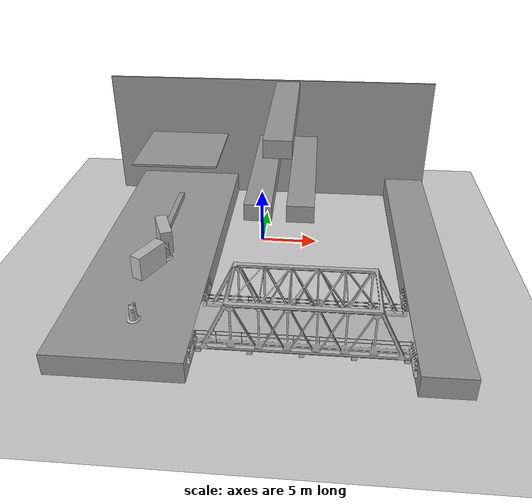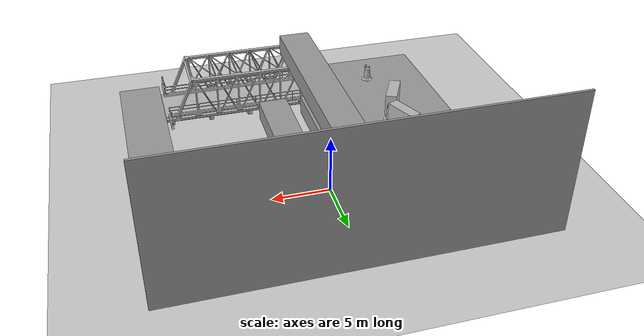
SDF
<sdf version="1.6">
 <world name="default">
  <model name="ground_plane">
   <static>1</static>
   <link name="link">
    <collision name="collision">
     <geometry><plane><normal>0 0 1</normal><size>100 100</size></plane></geometry>
     <surface><friction><ode><mu>100</mu><mu2>50</mu2></ode></friction></surface>
    </collision>
    <visual name="visual">
     <cast_shadows>0</cast_shadows>
     <geometry><plane><normal>0 0 1</normal><size>100 100</size></plane></geometry>
     <material>
      <script><uri>file://media/materials/scripts/gazebo.material</uri><name>Gazebo/Grey</name></script>
     </material>
    </visual>
   </link>
  </model>
  <model name="truss_bridge">
   <static>1</static>
   <link name="link">
    <collision name="collision">
     <geometry><mesh><uri>model://truss_bridge/meshes/truss_bridge.dae</uri></mesh></geometry>
    </collision>
    <visual name="visual">
     <geometry><mesh><uri>model://truss_bridge/meshes/truss_bridge.dae</uri></mesh></geometry>
    </visual>
   </link>
   <pose>4.23114 -14.2919 1.51477 0 -0 1.57194</pose>
  </model>
  <model name="stage_7_model_2">
   <link name="link_0">
    <inertial>
     <mass>1.78308</mass>
     <inertia><ixx>118.07</ixx><ixy>0</ixy><ixz>0</ixz><iyy>2.7027</iyy><iyz>0</iyz><izz>119.584</izz></inertia>
    </inertial>
    <pose>13.855 -4.6516 -0.856819 0 -0 0</pose>
    <visual name="visual">
     <geometry><box><size>3.76682 28.1177 2</size></box></geometry>
     <material>
      <lighting>1</lighting>
      <script><uri>file://media/materials/scripts/gazebo.material</uri><name>Gazebo/Grey</name></script>
      <shader type="pixel"><normal_map>__default__</normal_map></shader>
      <ambient>0.3 0.3 0.3 1</ambient>
      <diffuse>0.7 0.7 0.7 1</diffuse>
      <specular>0.01 0.01 0.01 1</specular>
      <emissive>0 0 0 1</emissive>
     </material>
    </visual>
    <collision name="collision">
     <geometry><box><size>3.76682 28.1177 2</size></box></geometry>
     <surface>
      <friction>
       <ode><mu>1</mu><mu2>1</mu2><fdir1>0 0 0</fdir1><slip1>0</slip1><slip2>0</slip2></ode>
       <torsional>
        <coefficient>1</coefficient>
        <patch_radius>0</patch_radius>
        <surface_radius>0</surface_radius>
        <use_patch_radius>1</use_patch_radius>
        <ode><slip>0</slip></ode>
       </torsional>
      </friction>
      <bounce><restitution_coefficient>0</restitution_coefficient><threshold>1e+06</threshold></bounce>
      <contact>
       <collide_without_contact>0</collide_without_contact>
       <collide_without_contact_bitmask>1</collide_without_contact_bitmask>
       <collide_bitmask>1</collide_bitmask>
       <ode>
        <soft_cfm>0</soft_cfm>
        <soft_erp>0.2</soft_erp>
        <kp>1e+13</kp>
        <kd>1</kd>
        <max_vel>0.01</max_vel>
        <min_depth>0</min_depth>
       </ode>
       <bullet>
        <split_impulse>1</split_impulse>
        <split_impulse_penetration_threshold>-0.01</split_impulse_penetration_threshold>
        <soft_cfm>0</soft_cfm>
        <soft_erp>0.2</soft_erp>
        <kp>1e+13</kp>
        <kd>1</kd>
       </bullet>
      </contact>
     </surface>
    </collision>
   </link>
   <link name="link_0_clone">
    <inertial>
     <mass>10.6661</mass>
     <inertia><ixx>166.876</ixx><ixy>0</ixy><ixz>0</ixz><iyy>92.4397</iyy><iyz>0</iyz><izz>252.205</izz></inertia>
    </inertial>
    <pose>-8.47443 -4.74682 -0.856819 0 -0 0</pose>
    <visual name="visual">
     <geometry><box><size>10 28.1177 2</size></box></geometry>
     <material>
      <lighting>1</lighting>
      <script><uri>file://media/materials/scripts/gazebo.material</uri><name>Gazebo/Grey</name></script>
      <shader type="pixel"><normal_map>__default__</normal_map></shader>
      <ambient>0.3 0.3 0.3 1</ambient>
      <diffuse>0.7 0.7 0.7 1</diffuse>
      <specular>0.01 0.01 0.01 1</specular>
      <emissive>0 0 0 1</emissive>
     </material>
    </visual>
    <collision name="collision">
     <geometry><box><size>10 28.1177 2</size></box></geometry>
     <surface>
      <friction>
       <ode><mu>1</mu><mu2>1</mu2><fdir1>0 0 0</fdir1><slip1>0</slip1><slip2>0</slip2></ode>
       <torsional>
        <coefficient>1</coefficient>
        <patch_radius>0</patch_radius>
        <surface_radius>0</surface_radius>
        <use_patch_radius>1</use_patch_radius>
        <ode><slip>0</slip></ode>
       </torsional>
      </friction>
      <bounce><restitution_coefficient>0</restitution_coefficient><threshold>1e+06</threshold></bounce>
      <contact>
       <collide_without_contact>0</collide_without_contact>
       <collide_without_contact_bitmask>1</collide_without_contact_bitmask>
       <collide_bitmask>1</collide_bitmask>
       <ode>
        <soft_cfm>0</soft_cfm>
        <soft_erp>0.2</soft_erp>
        <kp>1e+13</kp>
        <kd>1</kd>
        <max_vel>0.01</max_vel>
        <min_depth>0</min_depth>
       </ode>
       <bullet>
        <split_impulse>1</split_impulse>
        <split_impulse_penetration_threshold>-0.01</split_impulse_penetration_threshold>
        <soft_cfm>0</soft_cfm>
        <soft_erp>0.2</soft_erp>
        <kp>1e+13</kp>
        <kd>1</kd>
       </bullet>
      </contact>
     </surface>
    </collision>
   </link>
   <link name="link_1">
    <inertial>
     <mass>24.1218</mass>
     <inertia><ixx>434.512</ixx><ixy>0</ixy><ixz>0</ixz><iyy>14.6959</iyy><iyz>0</iyz><izz>440.95</izz></inertia>
    </inertial>
    <pose>0.09 2.1 3.9 0 -0 0</pose>
    <visual name="visual">
     <geometry><box><size>2.29274 14.6323 1.5</size></box></geometry>
     <material>
      <lighting>1</lighting>
      <script><uri>file://media/materials/scripts/gazebo.material</uri><name>Gazebo/Grey</name></script>
      <shader type="pixel"><normal_map>__default__</normal_map></shader>
      <emissive>0 0 0 1</emissive>
      <ambient>0.3 0.3 0.3 1</ambient>
      <diffuse>0.7 0.7 0.7 1</diffuse>
      <specular>0.01 0.01 0.01 1</specular>
     </material>
    </visual>
    <collision name="collision">
     <geometry><box><size>2.29274 14.6323 1.43324</size></box></geometry>
     <surface>
      <friction>
       <ode><mu>1</mu><mu2>1</mu2><fdir1>0 0 0</fdir1><slip1>0</slip1><slip2>0</slip2></ode>
       <torsional>
        <coefficient>1</coefficient>
        <patch_radius>0</patch_radius>
        <surface_radius>0</surface_radius>
        <use_patch_radius>1</use_patch_radius>
        <ode><slip>0</slip></ode>
       </torsional>
      </friction>
      <bounce><restitution_coefficient>0</restitution_coefficient><threshold>1e+06</threshold></bounce>
      <contact>
       <collide_without_contact>0</collide_without_contact>
       <collide_without_contact_bitmask>1</collide_without_contact_bitmask>
       <collide_bitmask>1</collide_bitmask>
       <ode>
        <soft_cfm>0</soft_cfm>
        <soft_erp>0.2</soft_erp>
        <kp>1e+13</kp>
        <kd>1</kd>
        <max_vel>0.01</max_vel>
        <min_depth>0</min_depth>
       </ode>
       <bullet>
        <split_impulse>1</split_impulse>
        <split_impulse_penetration_threshold>-0.01</split_impulse_penetration_threshold>
        <soft_cfm>0</soft_cfm>
        <soft_erp>0.2</soft_erp>
        <kp>1e+13</kp>
        <kd>1</kd>
       </bullet>
      </contact>
     </surface>
    </collision>
   </link>
   <link name="link_1_clone">
    <inertial>
     <mass>24.1218</mass>
     <inertia><ixx>434.512</ixx><ixy>0</ixy><ixz>0</ixz><iyy>14.6959</iyy><iyz>0</iyz><izz>440.95</izz></inertia>
    </inertial>
    <pose>3.6 2.1 3.9 -1e-06 -0 -0.0008</pose>
    <visual name="visual">
     <geometry><box><size>2.29274 14.6323 1.5</size></box></geometry>
     <material>
      <lighting>1</lighting>
      <script><uri>file://media/materials/scripts/gazebo.material</uri><name>Gazebo/Grey</name></script>
      <shader type="pixel"><normal_map>__default__</normal_map></shader>
      <emissive>0 0 0 1</emissive>
      <ambient>0.3 0.3 0.3 1</ambient>
      <diffuse>0.7 0.7 0.7 1</diffuse>
      <specular>0.01 0.01 0.01 1</specular>
     </material>
    </visual>
    <collision name="collision">
     <geometry><box><size>2.29274 14.6323 1.43324</size></box></geometry>
     <surface>
      <friction>
       <ode><mu>1</mu><mu2>1</mu2><fdir1>0 0 0</fdir1><slip1>0</slip1><slip2>0</slip2></ode>
       <torsional>
        <coefficient>1</coefficient>
        <patch_radius>0</patch_radius>
        <surface_radius>0</surface_radius>
        <use_patch_radius>1</use_patch_radius>
        <ode><slip>0</slip></ode>
       </torsional>
      </friction>
      <bounce><restitution_coefficient>0</restitution_coefficient><threshold>1e+06</threshold></bounce>
      <contact>
       <collide_without_contact>0</collide_without_contact>
       <collide_without_contact_bitmask>1</collide_without_contact_bitmask>
       <collide_bitmask>1</collide_bitmask>
       <ode>
        <soft_cfm>0</soft_cfm>
        <soft_erp>0.2</soft_erp>
        <kp>1e+13</kp>
        <kd>1</kd>
        <max_vel>0.01</max_vel>
        <min_depth>0</min_depth>
       </ode>
       <bullet>
        <split_impulse>1</split_impulse>
        <split_impulse_penetration_threshold>-0.01</split_impulse_penetration_threshold>
        <soft_cfm>0</soft_cfm>
        <soft_erp>0.2</soft_erp>
        <kp>1e+13</kp>
        <kd>1</kd>
       </bullet>
      </contact>
     </surface>
    </collision>
   </link>
   <link name="link_1_clone_0">
    <inertial>
     <mass>24.1218</mass>
     <inertia><ixx>434.512</ixx><ixy>0</ixy><ixz>0</ixz><iyy>14.6959</iyy><iyz>0</iyz><izz>440.95</izz></inertia>
    </inertial>
    <pose>1.7 2.1 9.61321 -1e-06 -0 -0.0008</pose>
    <visual name="visual">
     <geometry><box><size>2.29274 14.6323 1.5</size></box></geometry>
     <material>
      <lighting>1</lighting>
      <script><uri>file://media/materials/scripts/gazebo.material</uri><name>Gazebo/Grey</name></script>
      <shader type="pixel"><normal_map>__default__</normal_map></shader>
      <emissive>0 0 0 1</emissive>
      <ambient>0.3 0.3 0.3 1</ambient>
      <diffuse>0.7 0.7 0.7 1</diffuse>
      <specular>0.01 0.01 0.01 1</specular>
     </material>
    </visual>
    <collision name="collision">
     <geometry><box><size>2.29274 14.6323 1.43324</size></box></geometry>
     <surface>
      <friction>
       <ode><mu>1</mu><mu2>1</mu2><fdir1>0 0 0</fdir1><slip1>0</slip1><slip2>0</slip2></ode>
       <torsional>
        <coefficient>1</coefficient>
        <patch_radius>0</patch_radius>
        <surface_radius>0</surface_radius>
        <use_patch_radius>1</use_patch_radius>
        <ode><slip>0</slip></ode>
       </torsional>
      </friction>
      <bounce><restitution_coefficient>0</restitution_coefficient><threshold>1e+06</threshold></bounce>
      <contact>
       <collide_without_contact>0</collide_without_contact>
       <collide_without_contact_bitmask>1</collide_without_contact_bitmask>
       <collide_bitmask>1</collide_bitmask>
       <ode>
        <soft_cfm>0</soft_cfm>
        <soft_erp>0.2</soft_erp>
        <kp>1e+13</kp>
        <kd>1</kd>
        <max_vel>0.01</max_vel>
        <min_depth>0</min_depth>
       </ode>
       <bullet>
        <split_impulse>1</split_impulse>
        <split_impulse_penetration_threshold>-0.01</split_impulse_penetration_threshold>
        <soft_cfm>0</soft_cfm>
        <soft_erp>0.2</soft_erp>
        <kp>1e+13</kp>
        <kd>1</kd>
       </bullet>
      </contact>
     </surface>
    </collision>
   </link>
   <link name="link_1_clone_1">
    <inertial>
     <mass>5.82419</mass>
     <inertia><ixx>30.9448</ixx><ixy>0</ixy><ixz>0</ixz><iyy>29.8324</iyy><iyz>0</iyz><izz>60.7438</izz></inertia>
    </inertial>
    <pose>-8.30541 5.41023 4.61431 -1e-06 -0 -0.0008</pose>
    <visual name="visual">
     <geometry><box><size>7.83783 7.98269 0.194134</size></box></geometry>
     <material>
      <lighting>1</lighting>
      <script><uri>file://media/materials/scripts/gazebo.material</uri><name>Gazebo/Grey</name></script>
      <shader type="pixel"><normal_map>__default__</normal_map></shader>
      <emissive>0 0 0 1</emissive>
      <ambient>0.3 0.3 0.3 1</ambient>
      <diffuse>0.7 0.7 0.7 1</diffuse>
      <specular>0.01 0.01 0.01 1</specular>
     </material>
    </visual>
    <collision name="collision">
     <geometry><box><size>7.83783 7.98269 0.185493</size></box></geometry>
     <surface>
      <friction>
       <ode><mu>1</mu><mu2>1</mu2><fdir1>0 0 0</fdir1><slip1>0</slip1><slip2>0</slip2></ode>
       <torsional>
        <coefficient>1</coefficient>
        <patch_radius>0</patch_radius>
        <surface_radius>0</surface_radius>
        <use_patch_radius>1</use_patch_radius>
        <ode><slip>0</slip></ode>
       </torsional>
      </friction>
      <bounce><restitution_coefficient>0</restitution_coefficient><threshold>1e+06</threshold></bounce>
      <contact>
       <collide_without_contact>0</collide_without_contact>
       <collide_without_contact_bitmask>1</collide_without_contact_bitmask>
       <collide_bitmask>1</collide_bitmask>
       <ode>
        <soft_cfm>0</soft_cfm>
        <soft_erp>0.2</soft_erp>
        <kp>1e+13</kp>
        <kd>1</kd>
        <max_vel>0.01</max_vel>
        <min_depth>0</min_depth>
       </ode>
       <bullet>
        <split_impulse>1</split_impulse>
        <split_impulse_penetration_threshold>-0.01</split_impulse_penetration_threshold>
        <soft_cfm>0</soft_cfm>
        <soft_erp>0.2</soft_erp>
        <kp>1e+13</kp>
        <kd>1</kd>
       </bullet>
      </contact>
     </surface>
    </collision>
   </link>
   <link name="link_1_clone_2">
    <inertial>
     <mass>18.0184</mass>
     <inertia><ixx>53.9959</ixx><ixy>0</ixy><ixz>0</ixz><iyy>0.750769</iyy><iyz>0</iyz><izz>53.9959</izz></inertia>
    </inertial>
    <pose>-8.34722 0.661434 0.412087 -1e-06 -0 -0.0008</pose>
    <visual name="visual">
     <geometry><box><size>0.5 5.97582 0.5</size></box></geometry>
     <material>
      <lighting>1</lighting>
      <script><uri>file://media/materials/scripts/gazebo.material</uri><name>Gazebo/Grey</name></script>
      <shader type="pixel"><normal_map>__default__</normal_map></shader>
      <emissive>0 0 0 1</emissive>
      <ambient>0.3 0.3 0.3 1</ambient>
      <diffuse>0.7 0.7 0.7 1</diffuse>
      <specular>0.01 0.01 0.01 1</specular>
     </material>
    </visual>
    <collision name="collision">
     <geometry><box><size>0.5 5.97582 0.5</size></box></geometry>
     <surface>
      <friction>
       <ode><mu>1</mu><mu2>1</mu2><fdir1>0 0 0</fdir1><slip1>0</slip1><slip2>0</slip2></ode>
       <torsional>
        <coefficient>1</coefficient>
        <patch_radius>0</patch_radius>
        <surface_radius>0</surface_radius>
        <use_patch_radius>1</use_patch_radius>
        <ode><slip>0</slip></ode>
       </torsional>
      </friction>
      <bounce><restitution_coefficient>0</restitution_coefficient><threshold>1e+06</threshold></bounce>
      <contact>
       <collide_without_contact>0</collide_without_contact>
       <collide_without_contact_bitmask>1</collide_without_contact_bitmask>
       <collide_bitmask>1</collide_bitmask>
       <ode>
        <soft_cfm>0</soft_cfm>
        <soft_erp>0.2</soft_erp>
        <kp>1e+13</kp>
        <kd>1</kd>
        <max_vel>0.01</max_vel>
        <min_depth>0</min_depth>
       </ode>
       <bullet>
        <split_impulse>1</split_impulse>
        <split_impulse_penetration_threshold>-0.01</split_impulse_penetration_threshold>
        <soft_cfm>0</soft_cfm>
        <soft_erp>0.2</soft_erp>
        <kp>1e+13</kp>
        <kd>1</kd>
       </bullet>
      </contact>
     </surface>
    </collision>
   </link>
   <link name="link_2">
    <inertial>
     <mass>67.2458</mass>
     <inertia><ixx>850.125</ixx><ixy>0</ixy><ixz>0</ixz><iyy>6525.54</iyy><iyz>0</iyz><izz>5675.86</izz></inertia>
    </inertial>
    <pose>-0.057927 9.45419 4.31508 0 -0 0</pose>
    <visual name="visual">
     <geometry><box><size>31.8248 0.2 12.3152</size></box></geometry>
     <material>
      <lighting>1</lighting>
      <script><uri>file://media/materials/scripts/gazebo.material</uri><name>Gazebo/Grey</name></script>
      <shader type="pixel"><normal_map>__default__</normal_map></shader>
      <ambient>0.3 0.3 0.3 1</ambient>
      <diffuse>0.7 0.7 0.7 1</diffuse>
      <specular>0.01 0.01 0.01 1</specular>
      <emissive>0 0 0 1</emissive>
     </material>
    </visual>
    <collision name="collision">
     <geometry><box><size>31.8248 0.2 12.3152</size></box></geometry>
     <surface>
      <friction>
       <ode><mu>1</mu><mu2>1</mu2><fdir1>0 0 0</fdir1><slip1>0</slip1><slip2>0</slip2></ode>
       <torsional>
        <coefficient>1</coefficient>
        <patch_radius>0</patch_radius>
        <surface_radius>0</surface_radius>
        <use_patch_radius>1</use_patch_radius>
        <ode><slip>0</slip></ode>
       </torsional>
      </friction>
      <bounce><restitution_coefficient>0</restitution_coefficient><threshold>1e+06</threshold></bounce>
      <contact>
       <collide_without_contact>0</collide_without_contact>
       <collide_without_contact_bitmask>1</collide_without_contact_bitmask>
       <collide_bitmask>1</collide_bitmask>
       <ode>
        <soft_cfm>0</soft_cfm>
        <soft_erp>0.2</soft_erp>
        <kp>1e+13</kp>
        <kd>1</kd>
        <max_vel>0.01</max_vel>
        <min_depth>0</min_depth>
       </ode>
       <bullet>
        <split_impulse>1</split_impulse>
        <split_impulse_penetration_threshold>-0.01</split_impulse_penetration_threshold>
        <soft_cfm>0</soft_cfm>
        <soft_erp>0.2</soft_erp>
        <kp>1e+13</kp>
        <kd>1</kd>
       </bullet>
      </contact>
     </surface>
    </collision>
   </link>
   <joint name="link_0_clone_JOINT_4" type="fixed">
    <parent>link_0_clone</parent>
    <child>link_1_clone_2</child>
    <physics>
     <ode><limit><cfm>0</cfm><erp>0.2</erp></limit><suspension><cfm>0</cfm><erp>0.2</erp></suspension></ode>
    </physics>
   </joint>
   <joint name="link_2_JOINT_0" type="fixed">
    <parent>link_2</parent>
    <child>link_0_clone</child>
    <physics>
     <ode><limit><cfm>0</cfm><erp>0.2</erp></limit><suspension><cfm>0</cfm><erp>0.2</erp></suspension></ode>
    </physics>
   </joint>
   <joint name="link_2_JOINT_1" type="fixed">
    <parent>link_2</parent>
    <child>link_1_clone_1</child>
    <physics>
     <ode><limit><cfm>0</cfm><erp>0.2</erp></limit><suspension><cfm>0</cfm><erp>0.2</erp></suspension></ode>
    </physics>
   </joint>
   <joint name="link_2_JOINT_2" type="fixed">
    <parent>link_2</parent>
    <child>link_1</child>
    <physics>
     <ode><limit><cfm>0</cfm><erp>0.2</erp></limit><suspension><cfm>0</cfm><erp>0.2</erp></suspension></ode>
    </physics>
   </joint>
   <joint name="link_2_JOINT_3" type="fixed">
    <parent>link_2</parent>
    <child>link_1_clone</child>
    <physics>
     <ode><limit><cfm>0</cfm><erp>0.2</erp></limit><suspension><cfm>0</cfm><erp>0.2</erp></suspension></ode>
    </physics>
   </joint>
   <joint name="link_2_JOINT_5" type="fixed">
    <parent>link_2</parent>
    <child>link_0</child>
    <physics>
     <ode><limit><cfm>0</cfm><erp>0.2</erp></limit><suspension><cfm>0</cfm><erp>0.2</erp></suspension></ode>
    </physics>
   </joint>
   <joint name="link_2_JOINT_6" type="fixed">
    <parent>link_2</parent>
    <child>link_1_clone_0</child>
    <physics>
     <ode><limit><cfm>0</cfm><erp>0.2</erp></limit><suspension><cfm>0</cfm><erp>0.2</erp></suspension></ode>
    </physics>
   </joint>
   <static>1</static>
   <pose>-0.021425 0.328243 1.76826 0.007894 -2e-06 0.001148</pose>
  </model>
  <model name="Construction Barrel_clone">
   <link name="link">
    <inertial>
     <pose>0 0 0.4 0 -0 0</pose>
     <mass>500</mass>
     <inertia><ixx>51.2096</ixx><iyy>51.2096</iyy><izz>25</izz><ixy>0</ixy><ixz>0</ixz><iyz>0</iyz></inertia>
    </inertial>
    <collision name="collision">
     <geometry><mesh><uri>model://construction_barrel/meshes/construction_barrel.dae</uri></mesh></geometry>
    </collision>
    <visual name="visual">
     <geometry><mesh><uri>model://construction_barrel/meshes/construction_barrel.dae</uri></mesh></geometry>
    </visual>
   </link>
   <pose>-7.44336 -6.47785 1.85777 0.007894 -2.7e-05 0.00377</pose>
  </model>
  <model name="brick_box_3x1x3">
   <static>1</static>
   <link name="chassis">
    <pose>0 0 1.5 0 -0 0</pose>
    <collision name="collision"><geometry><box><size>3 1 3</size></box></geometry></collision>
    <visual name="visual">
     <geometry><mesh><uri>model://brick_box_3x1x3/meshes/simple_box.dae</uri><scale>3 1 3</scale></mesh></geometry>
     <material>
      <script>
       <uri>model://brick_box_3x1x3/materials/scripts</uri>
       <uri>model://brick_box_3x1x3/materials/textures</uri>
       <name>BrickBox/Diffuse</name>
      </script>
     </material>
    </visual>
   </link>
   <pose>-8.04339 -4.55503 0.95907 0 0 -1.1758</pose>
  </model>
  <model name="brick_box_3x1x3_clone_0">
   <static>1</static>
   <link name="chassis">
    <pose>0 0 1.5 0 -0 0</pose>
    <collision name="collision"><geometry><box><size>3 1 3</size></box></geometry></collision>
    <visual name="visual">
     <geometry><mesh><uri>model://brick_box_3x1x3/meshes/simple_box.dae</uri><scale>3 1 3</scale></mesh></geometry>
     <material>
      <script>
       <uri>model://brick_box_3x1x3/materials/scripts</uri>
       <uri>model://brick_box_3x1x3/materials/textures</uri>
       <name>BrickBox/Diffuse</name>
      </script>
     </material>
    </visual>
   </link>
   <pose>-8.38331 -8.32207 0.89717 0 0 -2.0421</pose>
  </model>
  <model name="Construction Barrel_clone_clone_0">
   <link name="link">
    <inertial>
     <pose>0 0 0.4 0 -0 0</pose>
     <mass>500</mass>
     <inertia><ixx>51.2096</ixx><iyy>51.2096</iyy><izz>25</izz><ixy>0</ixy><ixz>0</ixz><iyz>0</iyz></inertia>
    </inertial>
    <collision name="collision">
     <geometry><mesh><uri>model://construction_barrel/meshes/construction_barrel.dae</uri></mesh></geometry>
    </collision>
    <visual name="visual">
     <geometry><mesh><uri>model://construction_barrel/meshes/construction_barrel.dae</uri></mesh></geometry>
    </visual>
   </link>
   <pose>-7.98604 -14.4043 1.7952 0.007893 -4.9e-05 0.006561</pose>
  </model>
 </world>
</sdf>
